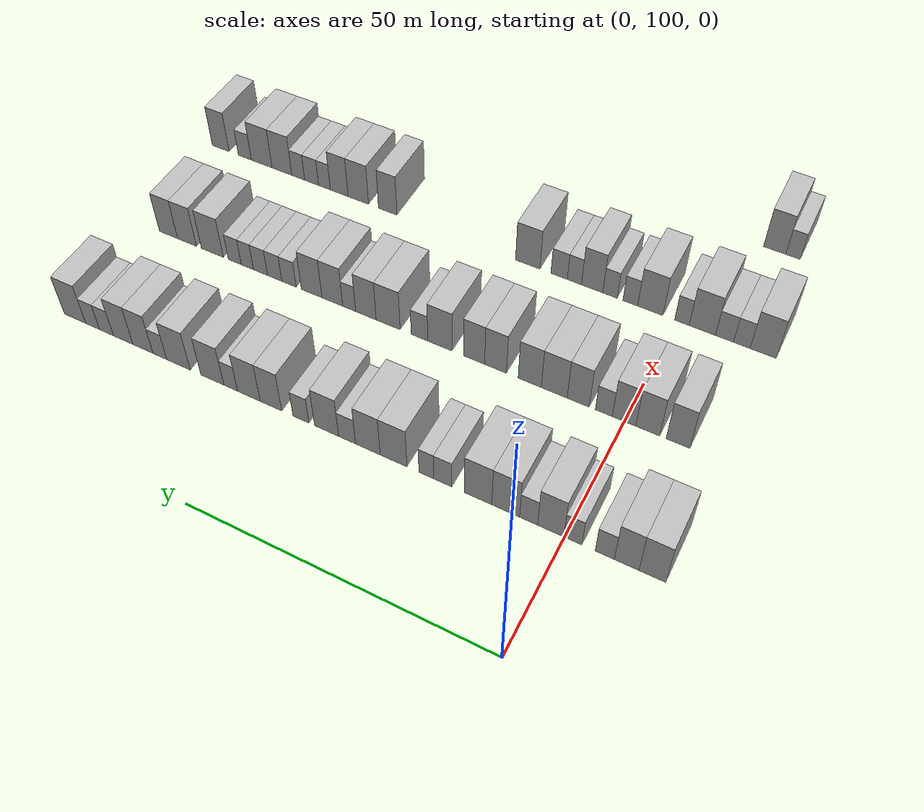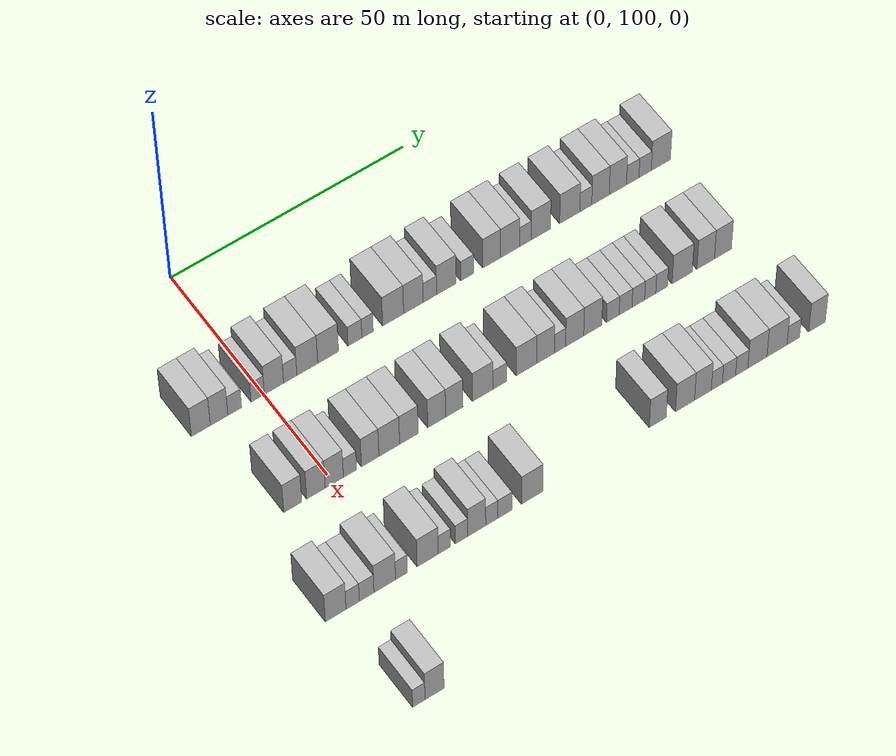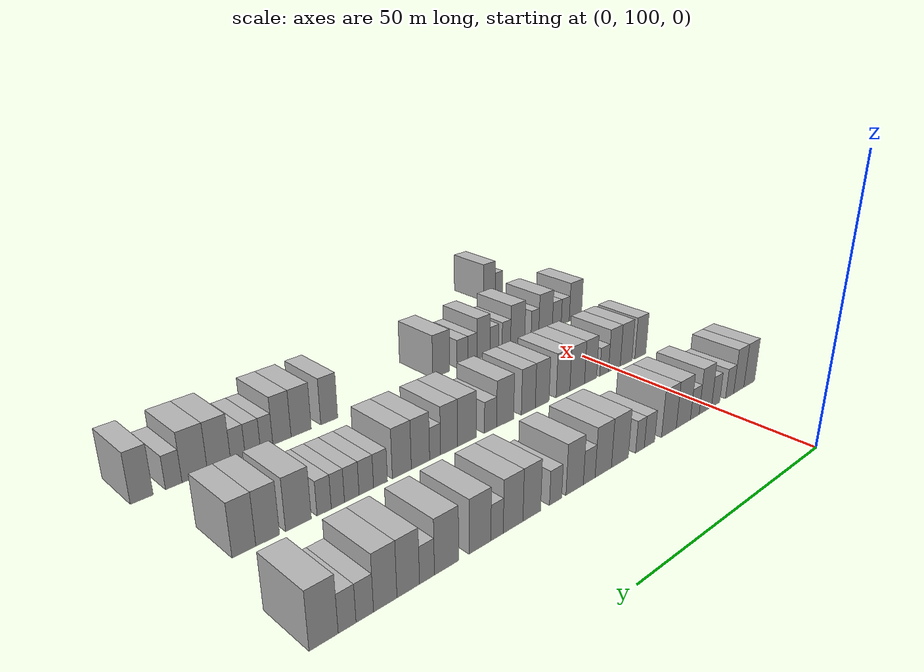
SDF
<sdf version="1.6">
 <world name="default">
  <model name="building_112">
   <static>1</static>
   <pose>25.0000 86.9545 0 0.000000 0.000000 0.000000</pose>
   <link name="link">
    <pose>0 0 4.50 0 0 0</pose>
    <collision name="collision"><geometry><box><size>10.0000 3.9299 9.0000</size></box></geometry></collision>
    <visual name="visual">
     <cast_shadows>0</cast_shadows>
     <geometry><box><size>10.0000 3.9299 9.0000</size></box></geometry>
     <material>
      <script>
       <uri>model://HANNAS_wall/materials/scripts</uri>
       <uri>model://HANNAS_wall/materials/textures</uri>
       <name>vrc/HANNAS_wall</name>
      </script>
     </material>
    </visual>
   </link>
  </model>
  <model name="building_113">
   <static>1</static>
   <pose>25.0000 90.7416 0 0.000000 0.000000 0.000000</pose>
   <link name="link">
    <pose>0 0 4.50 0 0 0</pose>
    <collision name="collision"><geometry><box><size>10.0000 3.6444 9.0000</size></box></geometry></collision>
    <visual name="visual">
     <cast_shadows>0</cast_shadows>
     <geometry><box><size>10.0000 3.6444 9.0000</size></box></geometry>
     <material>
      <script>
       <uri>model://HANNAS_wall/materials/scripts</uri>
       <uri>model://HANNAS_wall/materials/textures</uri>
       <name>vrc/HANNAS_wall</name>
      </script>
     </material>
    </visual>
   </link>
  </model>
  <model name="building_114">
   <static>1</static>
   <pose>25.0000 93.9831 0 0.000000 0.000000 0.000000</pose>
   <link name="link">
    <pose>0 0 3.00 0 0 0</pose>
    <collision name="collision"><geometry><box><size>10.0000 2.8384 6.0000</size></box></geometry></collision>
    <visual name="visual">
     <cast_shadows>0</cast_shadows>
     <geometry><box><size>10.0000 2.8384 6.0000</size></box></geometry>
     <material>
      <script>
       <uri>model://HANNAS_wall/materials/scripts</uri>
       <uri>model://HANNAS_wall/materials/textures</uri>
       <name>vrc/HANNAS_wall</name>
      </script>
     </material>
    </visual>
   </link>
  </model>
  <model name="building_115">
   <static>1</static>
   <pose>25.0000 98.7821 0 0.000000 0.000000 0.000000</pose>
   <link name="link">
    <pose>0 0 3.00 0 0 0</pose>
    <collision name="collision"><geometry><box><size>10.0000 2.7596 6.0000</size></box></geometry></collision>
    <visual name="visual">
     <cast_shadows>0</cast_shadows>
     <geometry><box><size>10.0000 2.7596 6.0000</size></box></geometry>
     <material>
      <script>
       <uri>model://HANNAS_wall/materials/scripts</uri>
       <uri>model://HANNAS_wall/materials/textures</uri>
       <name>vrc/HANNAS_wall</name>
      </script>
     </material>
    </visual>
   </link>
  </model>
  <model name="building_116">
   <static>1</static>
   <pose>25.0000 102.1818 0 0.000000 0.000000 0.000000</pose>
   <link name="link">
    <pose>0 0 4.50 0 0 0</pose>
    <collision name="collision"><geometry><box><size>10.0000 4.0398 9.0000</size></box></geometry></collision>
    <visual name="visual">
     <cast_shadows>0</cast_shadows>
     <geometry><box><size>10.0000 4.0398 9.0000</size></box></geometry>
     <material>
      <script>
       <uri>model://HANNAS_wall/materials/scripts</uri>
       <uri>model://HANNAS_wall/materials/textures</uri>
       <name>vrc/HANNAS_wall</name>
      </script>
     </material>
    </visual>
   </link>
  </model>
  <model name="building_117">
   <static>1</static>
   <pose>25.0000 105.5943 0 0.000000 0.000000 0.000000</pose>
   <link name="link">
    <pose>0 0 3.00 0 0 0</pose>
    <collision name="collision"><geometry><box><size>10.0000 2.7851 6.0000</size></box></geometry></collision>
    <visual name="visual">
     <cast_shadows>0</cast_shadows>
     <geometry><box><size>10.0000 2.7851 6.0000</size></box></geometry>
     <material>
      <script>
       <uri>model://HANNAS_wall/materials/scripts</uri>
       <uri>model://HANNAS_wall/materials/textures</uri>
       <name>vrc/HANNAS_wall</name>
      </script>
     </material>
    </visual>
   </link>
  </model>
  <model name="building_118">
   <static>1</static>
   <pose>25.0000 109.1761 0 0.000000 0.000000 0.000000</pose>
   <link name="link">
    <pose>0 0 4.50 0 0 0</pose>
    <collision name="collision"><geometry><box><size>10.0000 4.3785 9.0000</size></box></geometry></collision>
    <visual name="visual">
     <cast_shadows>0</cast_shadows>
     <geometry><box><size>10.0000 4.3785 9.0000</size></box></geometry>
     <material>
      <script>
       <uri>model://HANNAS_wall/materials/scripts</uri>
       <uri>model://HANNAS_wall/materials/textures</uri>
       <name>vrc/HANNAS_wall</name>
      </script>
     </material>
    </visual>
   </link>
  </model>
  <model name="building_119">
   <static>1</static>
   <pose>25.0000 113.5648 0 0.000000 0.000000 0.000000</pose>
   <link name="link">
    <pose>0 0 4.50 0 0 0</pose>
    <collision name="collision"><geometry><box><size>10.0000 4.3989 9.0000</size></box></geometry></collision>
    <visual name="visual">
     <cast_shadows>0</cast_shadows>
     <geometry><box><size>10.0000 4.3989 9.0000</size></box></geometry>
     <material>
      <script>
       <uri>model://HANNAS_wall/materials/scripts</uri>
       <uri>model://HANNAS_wall/materials/textures</uri>
       <name>vrc/HANNAS_wall</name>
      </script>
     </material>
    </visual>
   </link>
  </model>
  <model name="building_120">
   <static>1</static>
   <pose>25.0000 119.2417 0 0.000000 0.000000 0.000000</pose>
   <link name="link">
    <pose>0 0 3.00 0 0 0</pose>
    <collision name="collision"><geometry><box><size>10.0000 2.9548 6.0000</size></box></geometry></collision>
    <visual name="visual">
     <cast_shadows>0</cast_shadows>
     <geometry><box><size>10.0000 2.9548 6.0000</size></box></geometry>
     <material>
      <script>
       <uri>model://HANNAS_wall/materials/scripts</uri>
       <uri>model://HANNAS_wall/materials/textures</uri>
       <name>vrc/HANNAS_wall</name>
      </script>
     </material>
    </visual>
   </link>
  </model>
  <model name="building_121">
   <static>1</static>
   <pose>25.0000 121.9261 0 0.000000 0.000000 0.000000</pose>
   <link name="link">
    <pose>0 0 3.00 0 0 0</pose>
    <collision name="collision"><geometry><box><size>10.0000 2.4142 6.0000</size></box></geometry></collision>
    <visual name="visual">
     <cast_shadows>0</cast_shadows>
     <geometry><box><size>10.0000 2.4142 6.0000</size></box></geometry>
     <material>
      <script>
       <uri>model://HANNAS_wall/materials/scripts</uri>
       <uri>model://HANNAS_wall/materials/textures</uri>
       <name>vrc/HANNAS_wall</name>
      </script>
     </material>
    </visual>
   </link>
  </model>
  <model name="building_122">
   <static>1</static>
   <pose>25.0000 127.3734 0 0.000000 0.000000 0.000000</pose>
   <link name="link">
    <pose>0 0 4.50 0 0 0</pose>
    <collision name="collision"><geometry><box><size>10.0000 4.4804 9.0000</size></box></geometry></collision>
    <visual name="visual">
     <cast_shadows>0</cast_shadows>
     <geometry><box><size>10.0000 4.4804 9.0000</size></box></geometry>
     <material>
      <script>
       <uri>model://HANNAS_wall/materials/scripts</uri>
       <uri>model://HANNAS_wall/materials/textures</uri>
       <name>vrc/HANNAS_wall</name>
      </script>
     </material>
    </visual>
   </link>
  </model>
  <model name="building_123">
   <static>1</static>
   <pose>25.0000 131.6976 0 0.000000 0.000000 0.000000</pose>
   <link name="link">
    <pose>0 0 4.50 0 0 0</pose>
    <collision name="collision"><geometry><box><size>10.0000 4.1681 9.0000</size></box></geometry></collision>
    <visual name="visual">
     <cast_shadows>0</cast_shadows>
     <geometry><box><size>10.0000 4.1681 9.0000</size></box></geometry>
     <material>
      <script>
       <uri>model://HANNAS_wall/materials/scripts</uri>
       <uri>model://HANNAS_wall/materials/textures</uri>
       <name>vrc/HANNAS_wall</name>
      </script>
     </material>
    </visual>
   </link>
  </model>
  <model name="building_124">
   <static>1</static>
   <pose>25.0000 135.2369 0 0.000000 0.000000 0.000000</pose>
   <link name="link">
    <pose>0 0 3.00 0 0 0</pose>
    <collision name="collision"><geometry><box><size>10.0000 2.9104 6.0000</size></box></geometry></collision>
    <visual name="visual">
     <cast_shadows>0</cast_shadows>
     <geometry><box><size>10.0000 2.9104 6.0000</size></box></geometry>
     <material>
      <script>
       <uri>model://HANNAS_wall/materials/scripts</uri>
       <uri>model://HANNAS_wall/materials/textures</uri>
       <name>vrc/HANNAS_wall</name>
      </script>
     </material>
    </visual>
   </link>
  </model>
  <model name="building_125">
   <static>1</static>
   <pose>25.0000 138.7717 0 0.000000 0.000000 0.000000</pose>
   <link name="link">
    <pose>0 0 4.50 0 0 0</pose>
    <collision name="collision"><geometry><box><size>10.0000 4.1594 9.0000</size></box></geometry></collision>
    <visual name="visual">
     <cast_shadows>0</cast_shadows>
     <geometry><box><size>10.0000 4.1594 9.0000</size></box></geometry>
     <material>
      <script>
       <uri>model://HANNAS_wall/materials/scripts</uri>
       <uri>model://HANNAS_wall/materials/textures</uri>
       <name>vrc/HANNAS_wall</name>
      </script>
     </material>
    </visual>
   </link>
  </model>
  <model name="building_126">
   <static>1</static>
   <pose>25.0000 143.2519 0 0.000000 0.000000 0.000000</pose>
   <link name="link">
    <pose>0 0 3.00 0 0 0</pose>
    <collision name="collision"><geometry><box><size>10.0000 2.8009 6.0000</size></box></geometry></collision>
    <visual name="visual">
     <cast_shadows>0</cast_shadows>
     <geometry><box><size>10.0000 2.8009 6.0000</size></box></geometry>
     <material>
      <script>
       <uri>model://HANNAS_wall/materials/scripts</uri>
       <uri>model://HANNAS_wall/materials/textures</uri>
       <name>vrc/HANNAS_wall</name>
      </script>
     </material>
    </visual>
   </link>
  </model>
  <model name="building_127">
   <static>1</static>
   <pose>25.0000 148.5798 0 0.000000 0.000000 0.000000</pose>
   <link name="link">
    <pose>0 0 4.50 0 0 0</pose>
    <collision name="collision"><geometry><box><size>10.0000 3.8549 9.0000</size></box></geometry></collision>
    <visual name="visual">
     <cast_shadows>0</cast_shadows>
     <geometry><box><size>10.0000 3.8549 9.0000</size></box></geometry>
     <material>
      <script>
       <uri>model://HANNAS_wall/materials/scripts</uri>
       <uri>model://HANNAS_wall/materials/textures</uri>
       <name>vrc/HANNAS_wall</name>
      </script>
     </material>
    </visual>
   </link>
  </model>
  <model name="building_128">
   <static>1</static>
   <pose>25.0000 152.5712 0 0.000000 0.000000 0.000000</pose>
   <link name="link">
    <pose>0 0 4.50 0 0 0</pose>
    <collision name="collision"><geometry><box><size>10.0000 4.1280 9.0000</size></box></geometry></collision>
    <visual name="visual">
     <cast_shadows>0</cast_shadows>
     <geometry><box><size>10.0000 4.1280 9.0000</size></box></geometry>
     <material>
      <script>
       <uri>model://HANNAS_wall/materials/scripts</uri>
       <uri>model://HANNAS_wall/materials/textures</uri>
       <name>vrc/HANNAS_wall</name>
      </script>
     </material>
    </visual>
   </link>
  </model>
  <model name="building_129">
   <static>1</static>
   <pose>25.0000 155.8944 0 0.000000 0.000000 0.000000</pose>
   <link name="link">
    <pose>0 0 3.00 0 0 0</pose>
    <collision name="collision"><geometry><box><size>10.0000 2.5185 6.0000</size></box></geometry></collision>
    <visual name="visual">
     <cast_shadows>0</cast_shadows>
     <geometry><box><size>10.0000 2.5185 6.0000</size></box></geometry>
     <material>
      <script>
       <uri>model://HANNAS_wall/materials/scripts</uri>
       <uri>model://HANNAS_wall/materials/textures</uri>
       <name>vrc/HANNAS_wall</name>
      </script>
     </material>
    </visual>
   </link>
  </model>
  <model name="building_130">
   <static>1</static>
   <pose>25.0000 159.2806 0 0.000000 0.000000 0.000000</pose>
   <link name="link">
    <pose>0 0 4.50 0 0 0</pose>
    <collision name="collision"><geometry><box><size>10.0000 4.2538 9.0000</size></box></geometry></collision>
    <visual name="visual">
     <cast_shadows>0</cast_shadows>
     <geometry><box><size>10.0000 4.2538 9.0000</size></box></geometry>
     <material>
      <script>
       <uri>model://HANNAS_wall/materials/scripts</uri>
       <uri>model://HANNAS_wall/materials/textures</uri>
       <name>vrc/HANNAS_wall</name>
      </script>
     </material>
    </visual>
   </link>
  </model>
  <model name="building_131">
   <static>1</static>
   <pose>25.0000 165.6272 0 0.000000 0.000000 0.000000</pose>
   <link name="link">
    <pose>0 0 4.50 0 0 0</pose>
    <collision name="collision"><geometry><box><size>10.0000 4.4394 9.0000</size></box></geometry></collision>
    <visual name="visual">
     <cast_shadows>0</cast_shadows>
     <geometry><box><size>10.0000 4.4394 9.0000</size></box></geometry>
     <material>
      <script>
       <uri>model://HANNAS_wall/materials/scripts</uri>
       <uri>model://HANNAS_wall/materials/textures</uri>
       <name>vrc/HANNAS_wall</name>
      </script>
     </material>
    </visual>
   </link>
  </model>
  <model name="building_132">
   <static>1</static>
   <pose>25.0000 169.1642 0 0.000000 0.000000 0.000000</pose>
   <link name="link">
    <pose>0 0 3.00 0 0 0</pose>
    <collision name="collision"><geometry><box><size>10.0000 2.6346 6.0000</size></box></geometry></collision>
    <visual name="visual">
     <cast_shadows>0</cast_shadows>
     <geometry><box><size>10.0000 2.6346 6.0000</size></box></geometry>
     <material>
      <script>
       <uri>model://HANNAS_wall/materials/scripts</uri>
       <uri>model://HANNAS_wall/materials/textures</uri>
       <name>vrc/HANNAS_wall</name>
      </script>
     </material>
    </visual>
   </link>
  </model>
  <model name="building_133">
   <static>1</static>
   <pose>25.0000 172.4074 0 0.000000 0.000000 0.000000</pose>
   <link name="link">
    <pose>0 0 4.50 0 0 0</pose>
    <collision name="collision"><geometry><box><size>10.0000 3.8518 9.0000</size></box></geometry></collision>
    <visual name="visual">
     <cast_shadows>0</cast_shadows>
     <geometry><box><size>10.0000 3.8518 9.0000</size></box></geometry>
     <material>
      <script>
       <uri>model://HANNAS_wall/materials/scripts</uri>
       <uri>model://HANNAS_wall/materials/textures</uri>
       <name>vrc/HANNAS_wall</name>
      </script>
     </material>
    </visual>
   </link>
  </model>
  <model name="building_134">
   <static>1</static>
   <pose>25.0000 176.2506 0 0.000000 0.000000 0.000000</pose>
   <link name="link">
    <pose>0 0 4.50 0 0 0</pose>
    <collision name="collision"><geometry><box><size>10.0000 3.8345 9.0000</size></box></geometry></collision>
    <visual name="visual">
     <cast_shadows>0</cast_shadows>
     <geometry><box><size>10.0000 3.8345 9.0000</size></box></geometry>
     <material>
      <script>
       <uri>model://HANNAS_wall/materials/scripts</uri>
       <uri>model://HANNAS_wall/materials/textures</uri>
       <name>vrc/HANNAS_wall</name>
      </script>
     </material>
    </visual>
   </link>
  </model>
  <model name="building_135">
   <static>1</static>
   <pose>25.0000 179.5482 0 0.000000 0.000000 0.000000</pose>
   <link name="link">
    <pose>0 0 3.00 0 0 0</pose>
    <collision name="collision"><geometry><box><size>10.0000 2.7608 6.0000</size></box></geometry></collision>
    <visual name="visual">
     <cast_shadows>0</cast_shadows>
     <geometry><box><size>10.0000 2.7608 6.0000</size></box></geometry>
     <material>
      <script>
       <uri>model://HANNAS_wall/materials/scripts</uri>
       <uri>model://HANNAS_wall/materials/textures</uri>
       <name>vrc/HANNAS_wall</name>
      </script>
     </material>
    </visual>
   </link>
  </model>
  <model name="building_136">
   <static>1</static>
   <pose>25.0000 182.2932 0 0.000000 0.000000 0.000000</pose>
   <link name="link">
    <pose>0 0 3.00 0 0 0</pose>
    <collision name="collision"><geometry><box><size>10.0000 2.7291 6.0000</size></box></geometry></collision>
    <visual name="visual">
     <cast_shadows>0</cast_shadows>
     <geometry><box><size>10.0000 2.7291 6.0000</size></box></geometry>
     <material>
      <script>
       <uri>model://HANNAS_wall/materials/scripts</uri>
       <uri>model://HANNAS_wall/materials/textures</uri>
       <name>vrc/HANNAS_wall</name>
      </script>
     </material>
    </visual>
   </link>
  </model>
  <model name="building_137">
   <static>1</static>
   <pose>25.0000 185.8019 0 0.000000 0.000000 0.000000</pose>
   <link name="link">
    <pose>0 0 4.50 0 0 0</pose>
    <collision name="collision"><geometry><box><size>10.0000 4.2884 9.0000</size></box></geometry></collision>
    <visual name="visual">
     <cast_shadows>0</cast_shadows>
     <geometry><box><size>10.0000 4.2884 9.0000</size></box></geometry>
     <material>
      <script>
       <uri>model://HANNAS_wall/materials/scripts</uri>
       <uri>model://HANNAS_wall/materials/textures</uri>
       <name>vrc/HANNAS_wall</name>
      </script>
     </material>
    </visual>
   </link>
  </model>
  <model name="building_297">
   <static>1</static>
   <pose>47.0000 91.5479 0 0.000000 0.000000 0.000000</pose>
   <link name="link">
    <pose>0 0 4.50 0 0 0</pose>
    <collision name="collision"><geometry><box><size>10.0000 3.7376 9.0000</size></box></geometry></collision>
    <visual name="visual">
     <cast_shadows>0</cast_shadows>
     <geometry><box><size>10.0000 3.7376 9.0000</size></box></geometry>
     <material>
      <script>
       <uri>model://HANNAS_wall/materials/scripts</uri>
       <uri>model://HANNAS_wall/materials/textures</uri>
       <name>vrc/HANNAS_wall</name>
      </script>
     </material>
    </visual>
   </link>
  </model>
  <model name="building_298">
   <static>1</static>
   <pose>47.0000 96.3347 0 0.000000 0.000000 0.000000</pose>
   <link name="link">
    <pose>0 0 4.50 0 0 0</pose>
    <collision name="collision"><geometry><box><size>10.0000 3.8360 9.0000</size></box></geometry></collision>
    <visual name="visual">
     <cast_shadows>0</cast_shadows>
     <geometry><box><size>10.0000 3.8360 9.0000</size></box></geometry>
     <material>
      <script>
       <uri>model://HANNAS_wall/materials/scripts</uri>
       <uri>model://HANNAS_wall/materials/textures</uri>
       <name>vrc/HANNAS_wall</name>
      </script>
     </material>
    </visual>
   </link>
  </model>
  <model name="building_299">
   <static>1</static>
   <pose>47.0000 100.1430 0 0.000000 0.000000 0.000000</pose>
   <link name="link">
    <pose>0 0 4.50 0 0 0</pose>
    <collision name="collision"><geometry><box><size>10.0000 3.7805 9.0000</size></box></geometry></collision>
    <visual name="visual">
     <cast_shadows>0</cast_shadows>
     <geometry><box><size>10.0000 3.7805 9.0000</size></box></geometry>
     <material>
      <script>
       <uri>model://HANNAS_wall/materials/scripts</uri>
       <uri>model://HANNAS_wall/materials/textures</uri>
       <name>vrc/HANNAS_wall</name>
      </script>
     </material>
    </visual>
   </link>
  </model>
  <model name="building_300">
   <static>1</static>
   <pose>47.0000 103.4132 0 0.000000 0.000000 0.000000</pose>
   <link name="link">
    <pose>0 0 3.00 0 0 0</pose>
    <collision name="collision"><geometry><box><size>10.0000 2.7599 6.0000</size></box></geometry></collision>
    <visual name="visual">
     <cast_shadows>0</cast_shadows>
     <geometry><box><size>10.0000 2.7599 6.0000</size></box></geometry>
     <material>
      <script>
       <uri>model://HANNAS_wall/materials/scripts</uri>
       <uri>model://HANNAS_wall/materials/textures</uri>
       <name>vrc/HANNAS_wall</name>
      </script>
     </material>
    </visual>
   </link>
  </model>
  <model name="building_301">
   <static>1</static>
   <pose>47.0000 107.6189 0 0.000000 0.000000 0.000000</pose>
   <link name="link">
    <pose>0 0 4.50 0 0 0</pose>
    <collision name="collision"><geometry><box><size>10.0000 3.6516 9.0000</size></box></geometry></collision>
    <visual name="visual">
     <cast_shadows>0</cast_shadows>
     <geometry><box><size>10.0000 3.6516 9.0000</size></box></geometry>
     <material>
      <script>
       <uri>model://HANNAS_wall/materials/scripts</uri>
       <uri>model://HANNAS_wall/materials/textures</uri>
       <name>vrc/HANNAS_wall</name>
      </script>
     </material>
    </visual>
   </link>
  </model>
  <model name="building_302">
   <static>1</static>
   <pose>47.0000 111.6114 0 0.000000 0.000000 0.000000</pose>
   <link name="link">
    <pose>0 0 4.50 0 0 0</pose>
    <collision name="collision"><geometry><box><size>10.0000 4.3335 9.0000</size></box></geometry></collision>
    <visual name="visual">
     <cast_shadows>0</cast_shadows>
     <geometry><box><size>10.0000 4.3335 9.0000</size></box></geometry>
     <material>
      <script>
       <uri>model://HANNAS_wall/materials/scripts</uri>
       <uri>model://HANNAS_wall/materials/textures</uri>
       <name>vrc/HANNAS_wall</name>
      </script>
     </material>
    </visual>
   </link>
  </model>
  <model name="building_303">
   <static>1</static>
   <pose>47.0000 115.7368 0 0.000000 0.000000 0.000000</pose>
   <link name="link">
    <pose>0 0 4.50 0 0 0</pose>
    <collision name="collision"><geometry><box><size>10.0000 3.9173 9.0000</size></box></geometry></collision>
    <visual name="visual">
     <cast_shadows>0</cast_shadows>
     <geometry><box><size>10.0000 3.9173 9.0000</size></box></geometry>
     <material>
      <script>
       <uri>model://HANNAS_wall/materials/scripts</uri>
       <uri>model://HANNAS_wall/materials/textures</uri>
       <name>vrc/HANNAS_wall</name>
      </script>
     </material>
    </visual>
   </link>
  </model>
  <model name="building_304">
   <static>1</static>
   <pose>47.0000 121.5811 0 0.000000 0.000000 0.000000</pose>
   <link name="link">
    <pose>0 0 4.50 0 0 0</pose>
    <collision name="collision"><geometry><box><size>10.0000 3.7711 9.0000</size></box></geometry></collision>
    <visual name="visual">
     <cast_shadows>0</cast_shadows>
     <geometry><box><size>10.0000 3.7711 9.0000</size></box></geometry>
     <material>
      <script>
       <uri>model://HANNAS_wall/materials/scripts</uri>
       <uri>model://HANNAS_wall/materials/textures</uri>
       <name>vrc/HANNAS_wall</name>
      </script>
     </material>
    </visual>
   </link>
  </model>
  <model name="building_305">
   <static>1</static>
   <pose>47.0000 125.3160 0 0.000000 0.000000 0.000000</pose>
   <link name="link">
    <pose>0 0 4.50 0 0 0</pose>
    <collision name="collision"><geometry><box><size>10.0000 3.6987 9.0000</size></box></geometry></collision>
    <visual name="visual">
     <cast_shadows>0</cast_shadows>
     <geometry><box><size>10.0000 3.6987 9.0000</size></box></geometry>
     <material>
      <script>
       <uri>model://HANNAS_wall/materials/scripts</uri>
       <uri>model://HANNAS_wall/materials/textures</uri>
       <name>vrc/HANNAS_wall</name>
      </script>
     </material>
    </visual>
   </link>
  </model>
  <model name="building_306">
   <static>1</static>
   <pose>47.0000 131.3218 0 0.000000 0.000000 0.000000</pose>
   <link name="link">
    <pose>0 0 4.50 0 0 0</pose>
    <collision name="collision"><geometry><box><size>10.0000 4.3129 9.0000</size></box></geometry></collision>
    <visual name="visual">
     <cast_shadows>0</cast_shadows>
     <geometry><box><size>10.0000 4.3129 9.0000</size></box></geometry>
     <material>
      <script>
       <uri>model://HANNAS_wall/materials/scripts</uri>
       <uri>model://HANNAS_wall/materials/textures</uri>
       <name>vrc/HANNAS_wall</name>
      </script>
     </material>
    </visual>
   </link>
  </model>
  <model name="building_307">
   <static>1</static>
   <pose>47.0000 134.9725 0 0.000000 0.000000 0.000000</pose>
   <link name="link">
    <pose>0 0 3.00 0 0 0</pose>
    <collision name="collision"><geometry><box><size>10.0000 2.9886 6.0000</size></box></geometry></collision>
    <visual name="visual">
     <cast_shadows>0</cast_shadows>
     <geometry><box><size>10.0000 2.9886 6.0000</size></box></geometry>
     <material>
      <script>
       <uri>model://HANNAS_wall/materials/scripts</uri>
       <uri>model://HANNAS_wall/materials/textures</uri>
       <name>vrc/HANNAS_wall</name>
      </script>
     </material>
    </visual>
   </link>
  </model>
  <model name="building_308">
   <static>1</static>
   <pose>47.0000 140.6690 0 0.000000 0.000000 0.000000</pose>
   <link name="link">
    <pose>0 0 4.50 0 0 0</pose>
    <collision name="collision"><geometry><box><size>10.0000 4.4043 9.0000</size></box></geometry></collision>
    <visual name="visual">
     <cast_shadows>0</cast_shadows>
     <geometry><box><size>10.0000 4.4043 9.0000</size></box></geometry>
     <material>
      <script>
       <uri>model://HANNAS_wall/materials/scripts</uri>
       <uri>model://HANNAS_wall/materials/textures</uri>
       <name>vrc/HANNAS_wall</name>
      </script>
     </material>
    </visual>
   </link>
  </model>
  <model name="building_309">
   <static>1</static>
   <pose>47.0000 144.7731 0 0.000000 0.000000 0.000000</pose>
   <link name="link">
    <pose>0 0 4.50 0 0 0</pose>
    <collision name="collision"><geometry><box><size>10.0000 3.8039 9.0000</size></box></geometry></collision>
    <visual name="visual">
     <cast_shadows>0</cast_shadows>
     <geometry><box><size>10.0000 3.8039 9.0000</size></box></geometry>
     <material>
      <script>
       <uri>model://HANNAS_wall/materials/scripts</uri>
       <uri>model://HANNAS_wall/materials/textures</uri>
       <name>vrc/HANNAS_wall</name>
      </script>
     </material>
    </visual>
   </link>
  </model>
  <model name="building_310">
   <static>1</static>
   <pose>47.0000 147.8804 0 0.000000 0.000000 0.000000</pose>
   <link name="link">
    <pose>0 0 3.00 0 0 0</pose>
    <collision name="collision"><geometry><box><size>10.0000 2.4107 6.0000</size></box></geometry></collision>
    <visual name="visual">
     <cast_shadows>0</cast_shadows>
     <geometry><box><size>10.0000 2.4107 6.0000</size></box></geometry>
     <material>
      <script>
       <uri>model://HANNAS_wall/materials/scripts</uri>
       <uri>model://HANNAS_wall/materials/textures</uri>
       <name>vrc/HANNAS_wall</name>
      </script>
     </material>
    </visual>
   </link>
  </model>
  <model name="building_311">
   <static>1</static>
   <pose>47.0000 151.0451 0 0.000000 0.000000 0.000000</pose>
   <link name="link">
    <pose>0 0 4.50 0 0 0</pose>
    <collision name="collision"><geometry><box><size>10.0000 3.9187 9.0000</size></box></geometry></collision>
    <visual name="visual">
     <cast_shadows>0</cast_shadows>
     <geometry><box><size>10.0000 3.9187 9.0000</size></box></geometry>
     <material>
      <script>
       <uri>model://HANNAS_wall/materials/scripts</uri>
       <uri>model://HANNAS_wall/materials/textures</uri>
       <name>vrc/HANNAS_wall</name>
      </script>
     </material>
    </visual>
   </link>
  </model>
  <model name="building_312">
   <static>1</static>
   <pose>47.0000 154.9697 0 0.000000 0.000000 0.000000</pose>
   <link name="link">
    <pose>0 0 4.50 0 0 0</pose>
    <collision name="collision"><geometry><box><size>10.0000 3.9304 9.0000</size></box></geometry></collision>
    <visual name="visual">
     <cast_shadows>0</cast_shadows>
     <geometry><box><size>10.0000 3.9304 9.0000</size></box></geometry>
     <material>
      <script>
       <uri>model://HANNAS_wall/materials/scripts</uri>
       <uri>model://HANNAS_wall/materials/textures</uri>
       <name>vrc/HANNAS_wall</name>
      </script>
     </material>
    </visual>
   </link>
  </model>
  <model name="building_313">
   <static>1</static>
   <pose>47.0000 159.3144 0 0.000000 0.000000 0.000000</pose>
   <link name="link">
    <pose>0 0 3.00 0 0 0</pose>
    <collision name="collision"><geometry><box><size>10.0000 2.7591 6.0000</size></box></geometry></collision>
    <visual name="visual">
     <cast_shadows>0</cast_shadows>
     <geometry><box><size>10.0000 2.7591 6.0000</size></box></geometry>
     <material>
      <script>
       <uri>model://HANNAS_wall/materials/scripts</uri>
       <uri>model://HANNAS_wall/materials/textures</uri>
       <name>vrc/HANNAS_wall</name>
      </script>
     </material>
    </visual>
   </link>
  </model>
  <model name="building_314">
   <static>1</static>
   <pose>47.0000 162.0975 0 0.000000 0.000000 0.000000</pose>
   <link name="link">
    <pose>0 0 3.00 0 0 0</pose>
    <collision name="collision"><geometry><box><size>10.0000 2.8070 6.0000</size></box></geometry></collision>
    <visual name="visual">
     <cast_shadows>0</cast_shadows>
     <geometry><box><size>10.0000 2.8070 6.0000</size></box></geometry>
     <material>
      <script>
       <uri>model://HANNAS_wall/materials/scripts</uri>
       <uri>model://HANNAS_wall/materials/textures</uri>
       <name>vrc/HANNAS_wall</name>
      </script>
     </material>
    </visual>
   </link>
  </model>
  <model name="building_315">
   <static>1</static>
   <pose>47.0000 164.8837 0 0.000000 0.000000 0.000000</pose>
   <link name="link">
    <pose>0 0 3.00 0 0 0</pose>
    <collision name="collision"><geometry><box><size>10.0000 2.7654 6.0000</size></box></geometry></collision>
    <visual name="visual">
     <cast_shadows>0</cast_shadows>
     <geometry><box><size>10.0000 2.7654 6.0000</size></box></geometry>
     <material>
      <script>
       <uri>model://HANNAS_wall/materials/scripts</uri>
       <uri>model://HANNAS_wall/materials/textures</uri>
       <name>vrc/HANNAS_wall</name>
      </script>
     </material>
    </visual>
   </link>
  </model>
  <model name="building_316">
   <static>1</static>
   <pose>47.0000 167.4807 0 0.000000 0.000000 0.000000</pose>
   <link name="link">
    <pose>0 0 3.00 0 0 0</pose>
    <collision name="collision"><geometry><box><size>10.0000 2.4286 6.0000</size></box></geometry></collision>
    <visual name="visual">
     <cast_shadows>0</cast_shadows>
     <geometry><box><size>10.0000 2.4286 6.0000</size></box></geometry>
     <material>
      <script>
       <uri>model://HANNAS_wall/materials/scripts</uri>
       <uri>model://HANNAS_wall/materials/textures</uri>
       <name>vrc/HANNAS_wall</name>
      </script>
     </material>
    </visual>
   </link>
  </model>
  <model name="building_317">
   <static>1</static>
   <pose>47.0000 169.9825 0 0.000000 0.000000 0.000000</pose>
   <link name="link">
    <pose>0 0 3.00 0 0 0</pose>
    <collision name="collision"><geometry><box><size>10.0000 2.5751 6.0000</size></box></geometry></collision>
    <visual name="visual">
     <cast_shadows>0</cast_shadows>
     <geometry><box><size>10.0000 2.5751 6.0000</size></box></geometry>
     <material>
      <script>
       <uri>model://HANNAS_wall/materials/scripts</uri>
       <uri>model://HANNAS_wall/materials/textures</uri>
       <name>vrc/HANNAS_wall</name>
      </script>
     </material>
    </visual>
   </link>
  </model>
  <model name="building_318">
   <static>1</static>
   <pose>47.0000 174.4961 0 0.000000 0.000000 0.000000</pose>
   <link name="link">
    <pose>0 0 4.50 0 0 0</pose>
    <collision name="collision"><geometry><box><size>10.0000 4.4520 9.0000</size></box></geometry></collision>
    <visual name="visual">
     <cast_shadows>0</cast_shadows>
     <geometry><box><size>10.0000 4.4520 9.0000</size></box></geometry>
     <material>
      <script>
       <uri>model://HANNAS_wall/materials/scripts</uri>
       <uri>model://HANNAS_wall/materials/textures</uri>
       <name>vrc/HANNAS_wall</name>
      </script>
     </material>
    </visual>
   </link>
  </model>
  <model name="building_319">
   <static>1</static>
   <pose>47.0000 179.6646 0 0.000000 0.000000 0.000000</pose>
   <link name="link">
    <pose>0 0 4.50 0 0 0</pose>
    <collision name="collision"><geometry><box><size>10.0000 3.8850 9.0000</size></box></geometry></collision>
    <visual name="visual">
     <cast_shadows>0</cast_shadows>
     <geometry><box><size>10.0000 3.8850 9.0000</size></box></geometry>
     <material>
      <script>
       <uri>model://HANNAS_wall/materials/scripts</uri>
       <uri>model://HANNAS_wall/materials/textures</uri>
       <name>vrc/HANNAS_wall</name>
      </script>
     </material>
    </visual>
   </link>
  </model>
  <model name="building_320">
   <static>1</static>
   <pose>47.0000 183.4868 0 0.000000 0.000000 0.000000</pose>
   <link name="link">
    <pose>0 0 4.50 0 0 0</pose>
    <collision name="collision"><geometry><box><size>10.0000 3.7594 9.0000</size></box></geometry></collision>
    <visual name="visual">
     <cast_shadows>0</cast_shadows>
     <geometry><box><size>10.0000 3.7594 9.0000</size></box></geometry>
     <material>
      <script>
       <uri>model://HANNAS_wall/materials/scripts</uri>
       <uri>model://HANNAS_wall/materials/textures</uri>
       <name>vrc/HANNAS_wall</name>
      </script>
     </material>
    </visual>
   </link>
  </model>
  <model name="building_479">
   <static>1</static>
   <pose>69.0000 85.7060 0 0.000000 0.000000 0.000000</pose>
   <link name="link">
    <pose>0 0 4.50 0 0 0</pose>
    <collision name="collision"><geometry><box><size>10.0000 4.2386 9.0000</size></box></geometry></collision>
    <visual name="visual">
     <cast_shadows>0</cast_shadows>
     <geometry><box><size>10.0000 4.2386 9.0000</size></box></geometry>
     <material>
      <script>
       <uri>model://HANNAS_wall/materials/scripts</uri>
       <uri>model://HANNAS_wall/materials/textures</uri>
       <name>vrc/HANNAS_wall</name>
      </script>
     </material>
    </visual>
   </link>
  </model>
  <model name="building_480">
   <static>1</static>
   <pose>69.0000 89.1901 0 0.000000 0.000000 0.000000</pose>
   <link name="link">
    <pose>0 0 3.00 0 0 0</pose>
    <collision name="collision"><geometry><box><size>10.0000 2.7296 6.0000</size></box></geometry></collision>
    <visual name="visual">
     <cast_shadows>0</cast_shadows>
     <geometry><box><size>10.0000 2.7296 6.0000</size></box></geometry>
     <material>
      <script>
       <uri>model://HANNAS_wall/materials/scripts</uri>
       <uri>model://HANNAS_wall/materials/textures</uri>
       <name>vrc/HANNAS_wall</name>
      </script>
     </material>
    </visual>
   </link>
  </model>
  <model name="building_481">
   <static>1</static>
   <pose>69.0000 92.0497 0 0.000000 0.000000 0.000000</pose>
   <link name="link">
    <pose>0 0 3.00 0 0 0</pose>
    <collision name="collision"><geometry><box><size>10.0000 2.9897 6.0000</size></box></geometry></collision>
    <visual name="visual">
     <cast_shadows>0</cast_shadows>
     <geometry><box><size>10.0000 2.9897 6.0000</size></box></geometry>
     <material>
      <script>
       <uri>model://HANNAS_wall/materials/scripts</uri>
       <uri>model://HANNAS_wall/materials/textures</uri>
       <name>vrc/HANNAS_wall</name>
      </script>
     </material>
    </visual>
   </link>
  </model>
  <model name="building_482">
   <static>1</static>
   <pose>69.0000 95.7565 0 0.000000 0.000000 0.000000</pose>
   <link name="link">
    <pose>0 0 4.50 0 0 0</pose>
    <collision name="collision"><geometry><box><size>10.0000 4.4239 9.0000</size></box></geometry></collision>
    <visual name="visual">
     <cast_shadows>0</cast_shadows>
     <geometry><box><size>10.0000 4.4239 9.0000</size></box></geometry>
     <material>
      <script>
       <uri>model://HANNAS_wall/materials/scripts</uri>
       <uri>model://HANNAS_wall/materials/textures</uri>
       <name>vrc/HANNAS_wall</name>
      </script>
     </material>
    </visual>
   </link>
  </model>
  <model name="building_483">
   <static>1</static>
   <pose>69.0000 99.1954 0 0.000000 0.000000 0.000000</pose>
   <link name="link">
    <pose>0 0 3.00 0 0 0</pose>
    <collision name="collision"><geometry><box><size>10.0000 2.4537 6.0000</size></box></geometry></collision>
    <visual name="visual">
     <cast_shadows>0</cast_shadows>
     <geometry><box><size>10.0000 2.4537 6.0000</size></box></geometry>
     <material>
      <script>
       <uri>model://HANNAS_wall/materials/scripts</uri>
       <uri>model://HANNAS_wall/materials/textures</uri>
       <name>vrc/HANNAS_wall</name>
      </script>
     </material>
    </visual>
   </link>
  </model>
  <model name="building_484">
   <static>1</static>
   <pose>69.0000 104.6086 0 0.000000 0.000000 0.000000</pose>
   <link name="link">
    <pose>0 0 4.50 0 0 0</pose>
    <collision name="collision"><geometry><box><size>10.0000 4.3728 9.0000</size></box></geometry></collision>
    <visual name="visual">
     <cast_shadows>0</cast_shadows>
     <geometry><box><size>10.0000 4.3728 9.0000</size></box></geometry>
     <material>
      <script>
       <uri>model://HANNAS_wall/materials/scripts</uri>
       <uri>model://HANNAS_wall/materials/textures</uri>
       <name>vrc/HANNAS_wall</name>
      </script>
     </material>
    </visual>
   </link>
  </model>
  <model name="building_485">
   <static>1</static>
   <pose>69.0000 108.0716 0 0.000000 0.000000 0.000000</pose>
   <link name="link">
    <pose>0 0 3.00 0 0 0</pose>
    <collision name="collision"><geometry><box><size>10.0000 2.5532 6.0000</size></box></geometry></collision>
    <visual name="visual">
     <cast_shadows>0</cast_shadows>
     <geometry><box><size>10.0000 2.5532 6.0000</size></box></geometry>
     <material>
      <script>
       <uri>model://HANNAS_wall/materials/scripts</uri>
       <uri>model://HANNAS_wall/materials/textures</uri>
       <name>vrc/HANNAS_wall</name>
      </script>
     </material>
    </visual>
   </link>
  </model>
  <model name="building_486">
   <static>1</static>
   <pose>69.0000 111.6228 0 0.000000 0.000000 0.000000</pose>
   <link name="link">
    <pose>0 0 3.00 0 0 0</pose>
    <collision name="collision"><geometry><box><size>10.0000 2.5492 6.0000</size></box></geometry></collision>
    <visual name="visual">
     <cast_shadows>0</cast_shadows>
     <geometry><box><size>10.0000 2.5492 6.0000</size></box></geometry>
     <material>
      <script>
       <uri>model://HANNAS_wall/materials/scripts</uri>
       <uri>model://HANNAS_wall/materials/textures</uri>
       <name>vrc/HANNAS_wall</name>
      </script>
     </material>
    </visual>
   </link>
  </model>
  <model name="building_487">
   <static>1</static>
   <pose>69.0000 114.7873 0 0.000000 0.000000 0.000000</pose>
   <link name="link">
    <pose>0 0 4.50 0 0 0</pose>
    <collision name="collision"><geometry><box><size>10.0000 3.7797 9.0000</size></box></geometry></collision>
    <visual name="visual">
     <cast_shadows>0</cast_shadows>
     <geometry><box><size>10.0000 3.7797 9.0000</size></box></geometry>
     <material>
      <script>
       <uri>model://HANNAS_wall/materials/scripts</uri>
       <uri>model://HANNAS_wall/materials/textures</uri>
       <name>vrc/HANNAS_wall</name>
      </script>
     </material>
    </visual>
   </link>
  </model>
  <model name="building_488">
   <static>1</static>
   <pose>69.0000 117.9482 0 0.000000 0.000000 0.000000</pose>
   <link name="link">
    <pose>0 0 3.00 0 0 0</pose>
    <collision name="collision"><geometry><box><size>10.0000 2.5421 6.0000</size></box></geometry></collision>
    <visual name="visual">
     <cast_shadows>0</cast_shadows>
     <geometry><box><size>10.0000 2.5421 6.0000</size></box></geometry>
     <material>
      <script>
       <uri>model://HANNAS_wall/materials/scripts</uri>
       <uri>model://HANNAS_wall/materials/textures</uri>
       <name>vrc/HANNAS_wall</name>
      </script>
     </material>
    </visual>
   </link>
  </model>
  <model name="building_489">
   <static>1</static>
   <pose>69.0000 120.6960 0 0.000000 0.000000 0.000000</pose>
   <link name="link">
    <pose>0 0 3.00 0 0 0</pose>
    <collision name="collision"><geometry><box><size>10.0000 2.9535 6.0000</size></box></geometry></collision>
    <visual name="visual">
     <cast_shadows>0</cast_shadows>
     <geometry><box><size>10.0000 2.9535 6.0000</size></box></geometry>
     <material>
      <script>
       <uri>model://HANNAS_wall/materials/scripts</uri>
       <uri>model://HANNAS_wall/materials/textures</uri>
       <name>vrc/HANNAS_wall</name>
      </script>
     </material>
    </visual>
   </link>
  </model>
  <model name="building_490">
   <static>1</static>
   <pose>69.0000 126.4148 0 0.000000 0.000000 0.000000</pose>
   <link name="link">
    <pose>0 0 4.50 0 0 0</pose>
    <collision name="collision"><geometry><box><size>10.0000 4.4842 9.0000</size></box></geometry></collision>
    <visual name="visual">
     <cast_shadows>0</cast_shadows>
     <geometry><box><size>10.0000 4.4842 9.0000</size></box></geometry>
     <material>
      <script>
       <uri>model://HANNAS_wall/materials/scripts</uri>
       <uri>model://HANNAS_wall/materials/textures</uri>
       <name>vrc/HANNAS_wall</name>
      </script>
     </material>
    </visual>
   </link>
  </model>
  <model name="building_491">
   <static>1</static>
   <pose>69.0000 153.1409 0 0.000000 0.000000 0.000000</pose>
   <link name="link">
    <pose>0 0 4.50 0 0 0</pose>
    <collision name="collision"><geometry><box><size>10.0000 3.6560 9.0000</size></box></geometry></collision>
    <visual name="visual">
     <cast_shadows>0</cast_shadows>
     <geometry><box><size>10.0000 3.6560 9.0000</size></box></geometry>
     <material>
      <script>
       <uri>model://HANNAS_wall/materials/scripts</uri>
       <uri>model://HANNAS_wall/materials/textures</uri>
       <name>vrc/HANNAS_wall</name>
      </script>
     </material>
    </visual>
   </link>
  </model>
  <model name="building_492">
   <static>1</static>
   <pose>69.0000 159.0290 0 0.000000 0.000000 0.000000</pose>
   <link name="link">
    <pose>0 0 4.50 0 0 0</pose>
    <collision name="collision"><geometry><box><size>10.0000 4.1200 9.0000</size></box></geometry></collision>
    <visual name="visual">
     <cast_shadows>0</cast_shadows>
     <geometry><box><size>10.0000 4.1200 9.0000</size></box></geometry>
     <material>
      <script>
       <uri>model://HANNAS_wall/materials/scripts</uri>
       <uri>model://HANNAS_wall/materials/textures</uri>
       <name>vrc/HANNAS_wall</name>
      </script>
     </material>
    </visual>
   </link>
  </model>
  <model name="building_493">
   <static>1</static>
   <pose>69.0000 162.9044 0 0.000000 0.000000 0.000000</pose>
   <link name="link">
    <pose>0 0 4.50 0 0 0</pose>
    <collision name="collision"><geometry><box><size>10.0000 3.6308 9.0000</size></box></geometry></collision>
    <visual name="visual">
     <cast_shadows>0</cast_shadows>
     <geometry><box><size>10.0000 3.6308 9.0000</size></box></geometry>
     <material>
      <script>
       <uri>model://HANNAS_wall/materials/scripts</uri>
       <uri>model://HANNAS_wall/materials/textures</uri>
       <name>vrc/HANNAS_wall</name>
      </script>
     </material>
    </visual>
   </link>
  </model>
  <model name="building_494">
   <static>1</static>
   <pose>69.0000 165.9238 0 0.000000 0.000000 0.000000</pose>
   <link name="link">
    <pose>0 0 3.00 0 0 0</pose>
    <collision name="collision"><geometry><box><size>10.0000 2.4080 6.0000</size></box></geometry></collision>
    <visual name="visual">
     <cast_shadows>0</cast_shadows>
     <geometry><box><size>10.0000 2.4080 6.0000</size></box></geometry>
     <material>
      <script>
       <uri>model://HANNAS_wall/materials/scripts</uri>
       <uri>model://HANNAS_wall/materials/textures</uri>
       <name>vrc/HANNAS_wall</name>
      </script>
     </material>
    </visual>
   </link>
  </model>
  <model name="building_495">
   <static>1</static>
   <pose>69.0000 168.5623 0 0.000000 0.000000 0.000000</pose>
   <link name="link">
    <pose>0 0 3.00 0 0 0</pose>
    <collision name="collision"><geometry><box><size>10.0000 2.8690 6.0000</size></box></geometry></collision>
    <visual name="visual">
     <cast_shadows>0</cast_shadows>
     <geometry><box><size>10.0000 2.8690 6.0000</size></box></geometry>
     <material>
      <script>
       <uri>model://HANNAS_wall/materials/scripts</uri>
       <uri>model://HANNAS_wall/materials/textures</uri>
       <name>vrc/HANNAS_wall</name>
      </script>
     </material>
    </visual>
   </link>
  </model>
  <model name="building_496">
   <static>1</static>
   <pose>69.0000 171.3329 0 0.000000 0.000000 0.000000</pose>
   <link name="link">
    <pose>0 0 3.00 0 0 0</pose>
    <collision name="collision"><geometry><box><size>10.0000 2.6721 6.0000</size></box></geometry></collision>
    <visual name="visual">
     <cast_shadows>0</cast_shadows>
     <geometry><box><size>10.0000 2.6721 6.0000</size></box></geometry>
     <material>
      <script>
       <uri>model://HANNAS_wall/materials/scripts</uri>
       <uri>model://HANNAS_wall/materials/textures</uri>
       <name>vrc/HANNAS_wall</name>
      </script>
     </material>
    </visual>
   </link>
  </model>
  <model name="building_497">
   <static>1</static>
   <pose>69.0000 174.7551 0 0.000000 0.000000 0.000000</pose>
   <link name="link">
    <pose>0 0 4.50 0 0 0</pose>
    <collision name="collision"><geometry><box><size>10.0000 4.1723 9.0000</size></box></geometry></collision>
    <visual name="visual">
     <cast_shadows>0</cast_shadows>
     <geometry><box><size>10.0000 4.1723 9.0000</size></box></geometry>
     <material>
      <script>
       <uri>model://HANNAS_wall/materials/scripts</uri>
       <uri>model://HANNAS_wall/materials/textures</uri>
       <name>vrc/HANNAS_wall</name>
      </script>
     </material>
    </visual>
   </link>
  </model>
  <model name="building_498">
   <static>1</static>
   <pose>69.0000 179.0443 0 0.000000 0.000000 0.000000</pose>
   <link name="link">
    <pose>0 0 4.50 0 0 0</pose>
    <collision name="collision"><geometry><box><size>10.0000 4.4060 9.0000</size></box></geometry></collision>
    <visual name="visual">
     <cast_shadows>0</cast_shadows>
     <geometry><box><size>10.0000 4.4060 9.0000</size></box></geometry>
     <material>
      <script>
       <uri>model://HANNAS_wall/materials/scripts</uri>
       <uri>model://HANNAS_wall/materials/textures</uri>
       <name>vrc/HANNAS_wall</name>
      </script>
     </material>
    </visual>
   </link>
  </model>
  <model name="building_499">
   <static>1</static>
   <pose>69.0000 182.6411 0 0.000000 0.000000 0.000000</pose>
   <link name="link">
    <pose>0 0 3.00 0 0 0</pose>
    <collision name="collision"><geometry><box><size>10.0000 2.7877 6.0000</size></box></geometry></collision>
    <visual name="visual">
     <cast_shadows>0</cast_shadows>
     <geometry><box><size>10.0000 2.7877 6.0000</size></box></geometry>
     <material>
      <script>
       <uri>model://HANNAS_wall/materials/scripts</uri>
       <uri>model://HANNAS_wall/materials/textures</uri>
       <name>vrc/HANNAS_wall</name>
      </script>
     </material>
    </visual>
   </link>
  </model>
  <model name="building_500">
   <static>1</static>
   <pose>69.0000 187.8627 0 0.000000 0.000000 0.000000</pose>
   <link name="link">
    <pose>0 0 4.50 0 0 0</pose>
    <collision name="collision"><geometry><box><size>10.0000 3.6555 9.0000</size></box></geometry></collision>
    <visual name="visual">
     <cast_shadows>0</cast_shadows>
     <geometry><box><size>10.0000 3.6555 9.0000</size></box></geometry>
     <material>
      <script>
       <uri>model://HANNAS_wall/materials/scripts</uri>
       <uri>model://HANNAS_wall/materials/textures</uri>
       <name>vrc/HANNAS_wall</name>
      </script>
     </material>
    </visual>
   </link>
  </model>
  <model name="building_647">
   <static>1</static>
   <pose>91.0000 87.7197 0 0.000000 0.000000 0.000000</pose>
   <link name="link">
    <pose>0 0 3.00 0 0 0</pose>
    <collision name="collision"><geometry><box><size>10.0000 2.5124 6.0000</size></box></geometry></collision>
    <visual name="visual">
     <cast_shadows>0</cast_shadows>
     <geometry><box><size>10.0000 2.5124 6.0000</size></box></geometry>
     <material>
      <script>
       <uri>model://HANNAS_wall/materials/scripts</uri>
       <uri>model://HANNAS_wall/materials/textures</uri>
       <name>vrc/HANNAS_wall</name>
      </script>
     </material>
    </visual>
   </link>
  </model>
  <model name="building_648">
   <static>1</static>
   <pose>91.0000 90.9124 0 0.000000 0.000000 0.000000</pose>
   <link name="link">
    <pose>0 0 4.50 0 0 0</pose>
    <collision name="collision"><geometry><box><size>10.0000 3.8729 9.0000</size></box></geometry></collision>
    <visual name="visual">
     <cast_shadows>0</cast_shadows>
     <geometry><box><size>10.0000 3.8729 9.0000</size></box></geometry>
     <material>
      <script>
       <uri>model://HANNAS_wall/materials/scripts</uri>
       <uri>model://HANNAS_wall/materials/textures</uri>
       <name>vrc/HANNAS_wall</name>
      </script>
     </material>
    </visual>
   </link>
  </model>
 </world>
</sdf>
